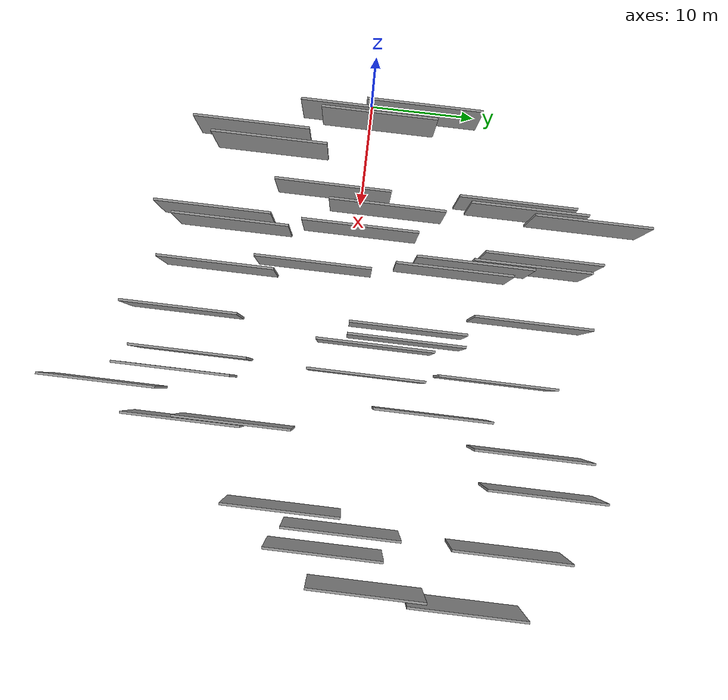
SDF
<sdf version="1.6">
 <world name="default">
  <scene>
   <sky><clouds><speed>12</speed></clouds></sky>
   <ambient>0.4 0.4 0.4 1</ambient>
   <background>0.7 0.7 0.7 1</background>
   <shadows>1</shadows>
  </scene>
  <gravity>0 0 -9.8066</gravity>
  <magnetic_field>6e-06 2.3e-05 -4.2e-05</magnetic_field>
  <physics default="0" name="default_physics" type="ode">
   <ode>
    <solver>
     <type>quick</type>
     <iters>10</iters>
     <sor>1.0</sor>
     <use_dynamic_moi_rescaling>0</use_dynamic_moi_rescaling>
    </solver>
    <constraints>
     <cfm>0</cfm>
     <erp>0.2</erp>
     <contact_max_correcting_vel>100</contact_max_correcting_vel>
     <contact_surface_layer>0.001</contact_surface_layer>
    </constraints>
   </ode>
   <max_step_size>0.004</max_step_size>
   <real_time_factor>1</real_time_factor>
   <real_time_update_rate>250</real_time_update_rate>
  </physics>
  <light name="sun" type="directional">
   <pose>0 0 10 0 0 0</pose>
   <diffuse>0.8 0.8 0.8 1</diffuse>
   <specular>0.2 0.2 0.2 1</specular>
   <attenuation>
    <range>1000</range>
    <constant>0.9</constant>
    <linear>0.01</linear>
    <quadratic>0.001</quadratic>
   </attenuation>
   <direction>-0.5 0.1 -0.9</direction>
  </light>
  <model name="grey_wall_1">
   <static>1</static>
   <pose>34.7637 18.2549 5.0 0.000000 0.000000 1.570796</pose>
   <link name="link">
    <pose>0 0 2.00 0 0 0</pose>
    <collision name="collision"><geometry><box><size>10.00 0.2 4.00</size></box></geometry></collision>
    <visual name="visual">
     <cast_shadows>0</cast_shadows>
     <geometry><box><size>10.00 0.2 4.00</size></box></geometry>
     <material>
      <script>
       <uri>model://grey_wall/materials/scripts</uri>
       <uri>model://grey_wall/materials/textures</uri>
       <name>vrc/grey_wall</name>
      </script>
     </material>
    </visual>
   </link>
  </model>
  <model name="grey_wall_2">
   <static>1</static>
   <pose>16.1604 10.3642 5.0 0.000000 0.000000 1.570796</pose>
   <link name="link">
    <pose>0 0 2.00 0 0 0</pose>
    <collision name="collision"><geometry><box><size>10.00 0.2 4.00</size></box></geometry></collision>
    <visual name="visual">
     <cast_shadows>0</cast_shadows>
     <geometry><box><size>10.00 0.2 4.00</size></box></geometry>
     <material>
      <script>
       <uri>model://grey_wall/materials/scripts</uri>
       <uri>model://grey_wall/materials/textures</uri>
       <name>vrc/grey_wall</name>
      </script>
     </material>
    </visual>
   </link>
  </model>
  <model name="grey_wall_3">
   <static>1</static>
   <pose>15.0971 16.0764 5.0 0.000000 0.000000 1.570796</pose>
   <link name="link">
    <pose>0 0 2.00 0 0 0</pose>
    <collision name="collision"><geometry><box><size>10.00 0.2 4.00</size></box></geometry></collision>
    <visual name="visual">
     <cast_shadows>0</cast_shadows>
     <geometry><box><size>10.00 0.2 4.00</size></box></geometry>
     <material>
      <script>
       <uri>model://grey_wall/materials/scripts</uri>
       <uri>model://grey_wall/materials/textures</uri>
       <name>vrc/grey_wall</name>
      </script>
     </material>
    </visual>
   </link>
  </model>
  <model name="grey_wall_4">
   <static>1</static>
   <pose>31.8353 -8.3380 5.0 0.000000 0.000000 1.570796</pose>
   <link name="link">
    <pose>0 0 2.00 0 0 0</pose>
    <collision name="collision"><geometry><box><size>10.00 0.2 4.00</size></box></geometry></collision>
    <visual name="visual">
     <cast_shadows>0</cast_shadows>
     <geometry><box><size>10.00 0.2 4.00</size></box></geometry>
     <material>
      <script>
       <uri>model://grey_wall/materials/scripts</uri>
       <uri>model://grey_wall/materials/textures</uri>
       <name>vrc/grey_wall</name>
      </script>
     </material>
    </visual>
   </link>
  </model>
  <model name="grey_wall_5">
   <static>1</static>
   <pose>16.9099 8.6709 5.0 0.000000 0.000000 1.570796</pose>
   <link name="link">
    <pose>0 0 2.00 0 0 0</pose>
    <collision name="collision"><geometry><box><size>10.00 0.2 4.00</size></box></geometry></collision>
    <visual name="visual">
     <cast_shadows>0</cast_shadows>
     <geometry><box><size>10.00 0.2 4.00</size></box></geometry>
     <material>
      <script>
       <uri>model://grey_wall/materials/scripts</uri>
       <uri>model://grey_wall/materials/textures</uri>
       <name>vrc/grey_wall</name>
      </script>
     </material>
    </visual>
   </link>
  </model>
  <model name="grey_wall_6">
   <static>1</static>
   <pose>10.9218 -2.3869 5.0 0.000000 0.000000 1.570796</pose>
   <link name="link">
    <pose>0 0 2.00 0 0 0</pose>
    <collision name="collision"><geometry><box><size>10.00 0.2 4.00</size></box></geometry></collision>
    <visual name="visual">
     <cast_shadows>0</cast_shadows>
     <geometry><box><size>10.00 0.2 4.00</size></box></geometry>
     <material>
      <script>
       <uri>model://grey_wall/materials/scripts</uri>
       <uri>model://grey_wall/materials/textures</uri>
       <name>vrc/grey_wall</name>
      </script>
     </material>
    </visual>
   </link>
  </model>
  <model name="grey_wall_7">
   <static>1</static>
   <pose>18.6742 -11.4597 5.0 0.000000 0.000000 1.570796</pose>
   <link name="link">
    <pose>0 0 2.00 0 0 0</pose>
    <collision name="collision"><geometry><box><size>10.00 0.2 4.00</size></box></geometry></collision>
    <visual name="visual">
     <cast_shadows>0</cast_shadows>
     <geometry><box><size>10.00 0.2 4.00</size></box></geometry>
     <material>
      <script>
       <uri>model://grey_wall/materials/scripts</uri>
       <uri>model://grey_wall/materials/textures</uri>
       <name>vrc/grey_wall</name>
      </script>
     </material>
    </visual>
   </link>
  </model>
  <model name="grey_wall_8">
   <static>1</static>
   <pose>25.9425 13.2909 5.0 0.000000 0.000000 1.570796</pose>
   <link name="link">
    <pose>0 0 2.00 0 0 0</pose>
    <collision name="collision"><geometry><box><size>10.00 0.2 4.00</size></box></geometry></collision>
    <visual name="visual">
     <cast_shadows>0</cast_shadows>
     <geometry><box><size>10.00 0.2 4.00</size></box></geometry>
     <material>
      <script>
       <uri>model://grey_wall/materials/scripts</uri>
       <uri>model://grey_wall/materials/textures</uri>
       <name>vrc/grey_wall</name>
      </script>
     </material>
    </visual>
   </link>
  </model>
  <model name="grey_wall_9">
   <static>1</static>
   <pose>23.3302 5.2943 5.0 0.000000 0.000000 1.570796</pose>
   <link name="link">
    <pose>0 0 2.00 0 0 0</pose>
    <collision name="collision"><geometry><box><size>10.00 0.2 4.00</size></box></geometry></collision>
    <visual name="visual">
     <cast_shadows>0</cast_shadows>
     <geometry><box><size>10.00 0.2 4.00</size></box></geometry>
     <material>
      <script>
       <uri>model://grey_wall/materials/scripts</uri>
       <uri>model://grey_wall/materials/textures</uri>
       <name>vrc/grey_wall</name>
      </script>
     </material>
    </visual>
   </link>
  </model>
  <model name="grey_wall_10">
   <static>1</static>
   <pose>11.4710 19.9020 5.0 0.000000 0.000000 1.570796</pose>
   <link name="link">
    <pose>0 0 2.00 0 0 0</pose>
    <collision name="collision"><geometry><box><size>10.00 0.2 4.00</size></box></geometry></collision>
    <visual name="visual">
     <cast_shadows>0</cast_shadows>
     <geometry><box><size>10.00 0.2 4.00</size></box></geometry>
     <material>
      <script>
       <uri>model://grey_wall/materials/scripts</uri>
       <uri>model://grey_wall/materials/textures</uri>
       <name>vrc/grey_wall</name>
      </script>
     </material>
    </visual>
   </link>
  </model>
  <model name="grey_wall_11">
   <static>1</static>
   <pose>3.1005 4.6125 5.0 0.000000 0.000000 1.570796</pose>
   <link name="link">
    <pose>0 0 2.00 0 0 0</pose>
    <collision name="collision"><geometry><box><size>10.00 0.2 4.00</size></box></geometry></collision>
    <visual name="visual">
     <cast_shadows>0</cast_shadows>
     <geometry><box><size>10.00 0.2 4.00</size></box></geometry>
     <material>
      <script>
       <uri>model://grey_wall/materials/scripts</uri>
       <uri>model://grey_wall/materials/textures</uri>
       <name>vrc/grey_wall</name>
      </script>
     </material>
    </visual>
   </link>
  </model>
  <model name="grey_wall_12">
   <static>1</static>
   <pose>38.4521 -3.4374 5.0 0.000000 0.000000 1.570796</pose>
   <link name="link">
    <pose>0 0 2.00 0 0 0</pose>
    <collision name="collision"><geometry><box><size>10.00 0.2 4.00</size></box></geometry></collision>
    <visual name="visual">
     <cast_shadows>0</cast_shadows>
     <geometry><box><size>10.00 0.2 4.00</size></box></geometry>
     <material>
      <script>
       <uri>model://grey_wall/materials/scripts</uri>
       <uri>model://grey_wall/materials/textures</uri>
       <name>vrc/grey_wall</name>
      </script>
     </material>
    </visual>
   </link>
  </model>
  <model name="grey_wall_13">
   <static>1</static>
   <pose>41.5416 0.4805 5.0 0.000000 0.000000 1.570796</pose>
   <link name="link">
    <pose>0 0 2.00 0 0 0</pose>
    <collision name="collision"><geometry><box><size>10.00 0.2 4.00</size></box></geometry></collision>
    <visual name="visual">
     <cast_shadows>0</cast_shadows>
     <geometry><box><size>10.00 0.2 4.00</size></box></geometry>
     <material>
      <script>
       <uri>model://grey_wall/materials/scripts</uri>
       <uri>model://grey_wall/materials/textures</uri>
       <name>vrc/grey_wall</name>
      </script>
     </material>
    </visual>
   </link>
  </model>
  <model name="grey_wall_14">
   <static>1</static>
   <pose>44.3525 4.3148 5.0 0.000000 0.000000 1.570796</pose>
   <link name="link">
    <pose>0 0 2.00 0 0 0</pose>
    <collision name="collision"><geometry><box><size>10.00 0.2 4.00</size></box></geometry></collision>
    <visual name="visual">
     <cast_shadows>0</cast_shadows>
     <geometry><box><size>10.00 0.2 4.00</size></box></geometry>
     <material>
      <script>
       <uri>model://grey_wall/materials/scripts</uri>
       <uri>model://grey_wall/materials/textures</uri>
       <name>vrc/grey_wall</name>
      </script>
     </material>
    </visual>
   </link>
  </model>
  <model name="grey_wall_15">
   <static>1</static>
   <pose>31.6420 16.8582 5.0 0.000000 0.000000 1.570796</pose>
   <link name="link">
    <pose>0 0 2.00 0 0 0</pose>
    <collision name="collision"><geometry><box><size>10.00 0.2 4.00</size></box></geometry></collision>
    <visual name="visual">
     <cast_shadows>0</cast_shadows>
     <geometry><box><size>10.00 0.2 4.00</size></box></geometry>
     <material>
      <script>
       <uri>model://grey_wall/materials/scripts</uri>
       <uri>model://grey_wall/materials/textures</uri>
       <name>vrc/grey_wall</name>
      </script>
     </material>
    </visual>
   </link>
  </model>
  <model name="grey_wall_16">
   <static>1</static>
   <pose>22.2936 5.3319 5.0 0.000000 0.000000 1.570796</pose>
   <link name="link">
    <pose>0 0 2.00 0 0 0</pose>
    <collision name="collision"><geometry><box><size>10.00 0.2 4.00</size></box></geometry></collision>
    <visual name="visual">
     <cast_shadows>0</cast_shadows>
     <geometry><box><size>10.00 0.2 4.00</size></box></geometry>
     <material>
      <script>
       <uri>model://grey_wall/materials/scripts</uri>
       <uri>model://grey_wall/materials/textures</uri>
       <name>vrc/grey_wall</name>
      </script>
     </material>
    </visual>
   </link>
  </model>
  <model name="grey_wall_17">
   <static>1</static>
   <pose>12.0951 2.4137 5.0 0.000000 0.000000 1.570796</pose>
   <link name="link">
    <pose>0 0 2.00 0 0 0</pose>
    <collision name="collision"><geometry><box><size>10.00 0.2 4.00</size></box></geometry></collision>
    <visual name="visual">
     <cast_shadows>0</cast_shadows>
     <geometry><box><size>10.00 0.2 4.00</size></box></geometry>
     <material>
      <script>
       <uri>model://grey_wall/materials/scripts</uri>
       <uri>model://grey_wall/materials/textures</uri>
       <name>vrc/grey_wall</name>
      </script>
     </material>
    </visual>
   </link>
  </model>
  <model name="grey_wall_18">
   <static>1</static>
   <pose>7.4552 -8.3068 5.0 0.000000 0.000000 1.570796</pose>
   <link name="link">
    <pose>0 0 2.00 0 0 0</pose>
    <collision name="collision"><geometry><box><size>10.00 0.2 4.00</size></box></geometry></collision>
    <visual name="visual">
     <cast_shadows>0</cast_shadows>
     <geometry><box><size>10.00 0.2 4.00</size></box></geometry>
     <material>
      <script>
       <uri>model://grey_wall/materials/scripts</uri>
       <uri>model://grey_wall/materials/textures</uri>
       <name>vrc/grey_wall</name>
      </script>
     </material>
    </visual>
   </link>
  </model>
  <model name="grey_wall_19">
   <static>1</static>
   <pose>26.3927 -12.7651 5.0 0.000000 0.000000 1.570796</pose>
   <link name="link">
    <pose>0 0 2.00 0 0 0</pose>
    <collision name="collision"><geometry><box><size>10.00 0.2 4.00</size></box></geometry></collision>
    <visual name="visual">
     <cast_shadows>0</cast_shadows>
     <geometry><box><size>10.00 0.2 4.00</size></box></geometry>
     <material>
      <script>
       <uri>model://grey_wall/materials/scripts</uri>
       <uri>model://grey_wall/materials/textures</uri>
       <name>vrc/grey_wall</name>
      </script>
     </material>
    </visual>
   </link>
  </model>
  <model name="grey_wall_20">
   <static>1</static>
   <pose>14.8712 -10.6961 5.0 0.000000 0.000000 1.570796</pose>
   <link name="link">
    <pose>0 0 2.00 0 0 0</pose>
    <collision name="collision"><geometry><box><size>10.00 0.2 4.00</size></box></geometry></collision>
    <visual name="visual">
     <cast_shadows>0</cast_shadows>
     <geometry><box><size>10.00 0.2 4.00</size></box></geometry>
     <material>
      <script>
       <uri>model://grey_wall/materials/scripts</uri>
       <uri>model://grey_wall/materials/textures</uri>
       <name>vrc/grey_wall</name>
      </script>
     </material>
    </visual>
   </link>
  </model>
  <model name="grey_wall_21">
   <static>1</static>
   <pose>26.5992 2.2820 5.0 0.000000 0.000000 1.570796</pose>
   <link name="link">
    <pose>0 0 2.00 0 0 0</pose>
    <collision name="collision"><geometry><box><size>10.00 0.2 4.00</size></box></geometry></collision>
    <visual name="visual">
     <cast_shadows>0</cast_shadows>
     <geometry><box><size>10.00 0.2 4.00</size></box></geometry>
     <material>
      <script>
       <uri>model://grey_wall/materials/scripts</uri>
       <uri>model://grey_wall/materials/textures</uri>
       <name>vrc/grey_wall</name>
      </script>
     </material>
    </visual>
   </link>
  </model>
  <model name="grey_wall_22">
   <static>1</static>
   <pose>29.6820 -19.9737 5.0 0.000000 0.000000 1.570796</pose>
   <link name="link">
    <pose>0 0 2.00 0 0 0</pose>
    <collision name="collision"><geometry><box><size>10.00 0.2 4.00</size></box></geometry></collision>
    <visual name="visual">
     <cast_shadows>0</cast_shadows>
     <geometry><box><size>10.00 0.2 4.00</size></box></geometry>
     <material>
      <script>
       <uri>model://grey_wall/materials/scripts</uri>
       <uri>model://grey_wall/materials/textures</uri>
       <name>vrc/grey_wall</name>
      </script>
     </material>
    </visual>
   </link>
  </model>
  <model name="grey_wall_23">
   <static>1</static>
   <pose>3.7807 -1.0037 5.0 0.000000 0.000000 1.570796</pose>
   <link name="link">
    <pose>0 0 2.00 0 0 0</pose>
    <collision name="collision"><geometry><box><size>10.00 0.2 4.00</size></box></geometry></collision>
    <visual name="visual">
     <cast_shadows>0</cast_shadows>
     <geometry><box><size>10.00 0.2 4.00</size></box></geometry>
     <material>
      <script>
       <uri>model://grey_wall/materials/scripts</uri>
       <uri>model://grey_wall/materials/textures</uri>
       <name>vrc/grey_wall</name>
      </script>
     </material>
    </visual>
   </link>
  </model>
  <model name="grey_wall_24">
   <static>1</static>
   <pose>6.2934 -9.9723 5.0 0.000000 0.000000 1.570796</pose>
   <link name="link">
    <pose>0 0 2.00 0 0 0</pose>
    <collision name="collision"><geometry><box><size>10.00 0.2 4.00</size></box></geometry></collision>
    <visual name="visual">
     <cast_shadows>0</cast_shadows>
     <geometry><box><size>10.00 0.2 4.00</size></box></geometry>
     <material>
      <script>
       <uri>model://grey_wall/materials/scripts</uri>
       <uri>model://grey_wall/materials/textures</uri>
       <name>vrc/grey_wall</name>
      </script>
     </material>
    </visual>
   </link>
  </model>
  <model name="grey_wall_25">
   <static>1</static>
   <pose>27.9908 -13.9595 5.0 0.000000 0.000000 1.570796</pose>
   <link name="link">
    <pose>0 0 2.00 0 0 0</pose>
    <collision name="collision"><geometry><box><size>10.00 0.2 4.00</size></box></geometry></collision>
    <visual name="visual">
     <cast_shadows>0</cast_shadows>
     <geometry><box><size>10.00 0.2 4.00</size></box></geometry>
     <material>
      <script>
       <uri>model://grey_wall/materials/scripts</uri>
       <uri>model://grey_wall/materials/textures</uri>
       <name>vrc/grey_wall</name>
      </script>
     </material>
    </visual>
   </link>
  </model>
  <model name="grey_wall_26">
   <static>1</static>
   <pose>20.6391 15.7214 5.0 0.000000 0.000000 1.570796</pose>
   <link name="link">
    <pose>0 0 2.00 0 0 0</pose>
    <collision name="collision"><geometry><box><size>10.00 0.2 4.00</size></box></geometry></collision>
    <visual name="visual">
     <cast_shadows>0</cast_shadows>
     <geometry><box><size>10.00 0.2 4.00</size></box></geometry>
     <material>
      <script>
       <uri>model://grey_wall/materials/scripts</uri>
       <uri>model://grey_wall/materials/textures</uri>
       <name>vrc/grey_wall</name>
      </script>
     </material>
    </visual>
   </link>
  </model>
  <model name="grey_wall_27">
   <static>1</static>
   <pose>39.7407 1.7102 5.0 0.000000 0.000000 1.570796</pose>
   <link name="link">
    <pose>0 0 2.00 0 0 0</pose>
    <collision name="collision"><geometry><box><size>10.00 0.2 4.00</size></box></geometry></collision>
    <visual name="visual">
     <cast_shadows>0</cast_shadows>
     <geometry><box><size>10.00 0.2 4.00</size></box></geometry>
     <material>
      <script>
       <uri>model://grey_wall/materials/scripts</uri>
       <uri>model://grey_wall/materials/textures</uri>
       <name>vrc/grey_wall</name>
      </script>
     </material>
    </visual>
   </link>
  </model>
  <model name="grey_wall_28">
   <static>1</static>
   <pose>22.7997 -14.0242 5.0 0.000000 0.000000 1.570796</pose>
   <link name="link">
    <pose>0 0 2.00 0 0 0</pose>
    <collision name="collision"><geometry><box><size>10.00 0.2 4.00</size></box></geometry></collision>
    <visual name="visual">
     <cast_shadows>0</cast_shadows>
     <geometry><box><size>10.00 0.2 4.00</size></box></geometry>
     <material>
      <script>
       <uri>model://grey_wall/materials/scripts</uri>
       <uri>model://grey_wall/materials/textures</uri>
       <name>vrc/grey_wall</name>
      </script>
     </material>
    </visual>
   </link>
  </model>
  <model name="grey_wall_29">
   <static>1</static>
   <pose>24.0229 2.7648 5.0 0.000000 0.000000 1.570796</pose>
   <link name="link">
    <pose>0 0 2.00 0 0 0</pose>
    <collision name="collision"><geometry><box><size>10.00 0.2 4.00</size></box></geometry></collision>
    <visual name="visual">
     <cast_shadows>0</cast_shadows>
     <geometry><box><size>10.00 0.2 4.00</size></box></geometry>
     <material>
      <script>
       <uri>model://grey_wall/materials/scripts</uri>
       <uri>model://grey_wall/materials/textures</uri>
       <name>vrc/grey_wall</name>
      </script>
     </material>
    </visual>
   </link>
  </model>
  <model name="grey_wall_30">
   <static>1</static>
   <pose>17.6828 -3.2831 5.0 0.000000 0.000000 1.570796</pose>
   <link name="link">
    <pose>0 0 2.00 0 0 0</pose>
    <collision name="collision"><geometry><box><size>10.00 0.2 4.00</size></box></geometry></collision>
    <visual name="visual">
     <cast_shadows>0</cast_shadows>
     <geometry><box><size>10.00 0.2 4.00</size></box></geometry>
     <material>
      <script>
       <uri>model://grey_wall/materials/scripts</uri>
       <uri>model://grey_wall/materials/textures</uri>
       <name>vrc/grey_wall</name>
      </script>
     </material>
    </visual>
   </link>
  </model>
  <model name="grey_wall_31">
   <static>1</static>
   <pose>10.6012 13.3911 5.0 0.000000 0.000000 1.570796</pose>
   <link name="link">
    <pose>0 0 2.00 0 0 0</pose>
    <collision name="collision"><geometry><box><size>10.00 0.2 4.00</size></box></geometry></collision>
    <visual name="visual">
     <cast_shadows>0</cast_shadows>
     <geometry><box><size>10.00 0.2 4.00</size></box></geometry>
     <material>
      <script>
       <uri>model://grey_wall/materials/scripts</uri>
       <uri>model://grey_wall/materials/textures</uri>
       <name>vrc/grey_wall</name>
      </script>
     </material>
    </visual>
   </link>
  </model>
  <model name="grey_wall_32">
   <static>1</static>
   <pose>32.0592 -12.5823 5.0 0.000000 0.000000 1.570796</pose>
   <link name="link">
    <pose>0 0 2.00 0 0 0</pose>
    <collision name="collision"><geometry><box><size>10.00 0.2 4.00</size></box></geometry></collision>
    <visual name="visual">
     <cast_shadows>0</cast_shadows>
     <geometry><box><size>10.00 0.2 4.00</size></box></geometry>
     <material>
      <script>
       <uri>model://grey_wall/materials/scripts</uri>
       <uri>model://grey_wall/materials/textures</uri>
       <name>vrc/grey_wall</name>
      </script>
     </material>
    </visual>
   </link>
  </model>
  <model name="grey_wall_33">
   <static>1</static>
   <pose>29.2787 8.2061 5.0 0.000000 0.000000 1.570796</pose>
   <link name="link">
    <pose>0 0 2.00 0 0 0</pose>
    <collision name="collision"><geometry><box><size>10.00 0.2 4.00</size></box></geometry></collision>
    <visual name="visual">
     <cast_shadows>0</cast_shadows>
     <geometry><box><size>10.00 0.2 4.00</size></box></geometry>
     <material>
      <script>
       <uri>model://grey_wall/materials/scripts</uri>
       <uri>model://grey_wall/materials/textures</uri>
       <name>vrc/grey_wall</name>
      </script>
     </material>
    </visual>
   </link>
  </model>
  <model name="grey_wall_34">
   <static>1</static>
   <pose>4.2177 0.8348 5.0 0.000000 0.000000 1.570796</pose>
   <link name="link">
    <pose>0 0 2.00 0 0 0</pose>
    <collision name="collision"><geometry><box><size>10.00 0.2 4.00</size></box></geometry></collision>
    <visual name="visual">
     <cast_shadows>0</cast_shadows>
     <geometry><box><size>10.00 0.2 4.00</size></box></geometry>
     <material>
      <script>
       <uri>model://grey_wall/materials/scripts</uri>
       <uri>model://grey_wall/materials/textures</uri>
       <name>vrc/grey_wall</name>
      </script>
     </material>
    </visual>
   </link>
  </model>
  <model name="grey_wall_35">
   <static>1</static>
   <pose>14.1422 0.3286 5.0 0.000000 0.000000 1.570796</pose>
   <link name="link">
    <pose>0 0 2.00 0 0 0</pose>
    <collision name="collision"><geometry><box><size>10.00 0.2 4.00</size></box></geometry></collision>
    <visual name="visual">
     <cast_shadows>0</cast_shadows>
     <geometry><box><size>10.00 0.2 4.00</size></box></geometry>
     <material>
      <script>
       <uri>model://grey_wall/materials/scripts</uri>
       <uri>model://grey_wall/materials/textures</uri>
       <name>vrc/grey_wall</name>
      </script>
     </material>
    </visual>
   </link>
  </model>
  <model name="grey_wall_36">
   <static>1</static>
   <pose>44.8494 12.7293 5.0 0.000000 0.000000 1.570796</pose>
   <link name="link">
    <pose>0 0 2.00 0 0 0</pose>
    <collision name="collision"><geometry><box><size>10.00 0.2 4.00</size></box></geometry></collision>
    <visual name="visual">
     <cast_shadows>0</cast_shadows>
     <geometry><box><size>10.00 0.2 4.00</size></box></geometry>
     <material>
      <script>
       <uri>model://grey_wall/materials/scripts</uri>
       <uri>model://grey_wall/materials/textures</uri>
       <name>vrc/grey_wall</name>
      </script>
     </material>
    </visual>
   </link>
  </model>
  <model name="grey_wall_37">
   <static>1</static>
   <pose>39.9267 15.8647 5.0 0.000000 0.000000 1.570796</pose>
   <link name="link">
    <pose>0 0 2.00 0 0 0</pose>
    <collision name="collision"><geometry><box><size>10.00 0.2 4.00</size></box></geometry></collision>
    <visual name="visual">
     <cast_shadows>0</cast_shadows>
     <geometry><box><size>10.00 0.2 4.00</size></box></geometry>
     <material>
      <script>
       <uri>model://grey_wall/materials/scripts</uri>
       <uri>model://grey_wall/materials/textures</uri>
       <name>vrc/grey_wall</name>
      </script>
     </material>
    </visual>
   </link>
  </model>
  <model name="grey_wall_38">
   <static>1</static>
   <pose>15.8787 15.2010 5.0 0.000000 0.000000 1.570796</pose>
   <link name="link">
    <pose>0 0 2.00 0 0 0</pose>
    <collision name="collision"><geometry><box><size>10.00 0.2 4.00</size></box></geometry></collision>
    <visual name="visual">
     <cast_shadows>0</cast_shadows>
     <geometry><box><size>10.00 0.2 4.00</size></box></geometry>
     <material>
      <script>
       <uri>model://grey_wall/materials/scripts</uri>
       <uri>model://grey_wall/materials/textures</uri>
       <name>vrc/grey_wall</name>
      </script>
     </material>
    </visual>
   </link>
  </model>
  <model name="grey_wall_39">
   <static>1</static>
   <pose>13.9742 -12.3141 5.0 0.000000 0.000000 1.570796</pose>
   <link name="link">
    <pose>0 0 2.00 0 0 0</pose>
    <collision name="collision"><geometry><box><size>10.00 0.2 4.00</size></box></geometry></collision>
    <visual name="visual">
     <cast_shadows>0</cast_shadows>
     <geometry><box><size>10.00 0.2 4.00</size></box></geometry>
     <material>
      <script>
       <uri>model://grey_wall/materials/scripts</uri>
       <uri>model://grey_wall/materials/textures</uri>
       <name>vrc/grey_wall</name>
      </script>
     </material>
    </visual>
   </link>
  </model>
  <model name="grey_wall_40">
   <static>1</static>
   <pose>11.0246 14.4443 5.0 0.000000 0.000000 1.570796</pose>
   <link name="link">
    <pose>0 0 2.00 0 0 0</pose>
    <collision name="collision"><geometry><box><size>10.00 0.2 4.00</size></box></geometry></collision>
    <visual name="visual">
     <cast_shadows>0</cast_shadows>
     <geometry><box><size>10.00 0.2 4.00</size></box></geometry>
     <material>
      <script>
       <uri>model://grey_wall/materials/scripts</uri>
       <uri>model://grey_wall/materials/textures</uri>
       <name>vrc/grey_wall</name>
      </script>
     </material>
    </visual>
   </link>
  </model>
 </world>
</sdf>
